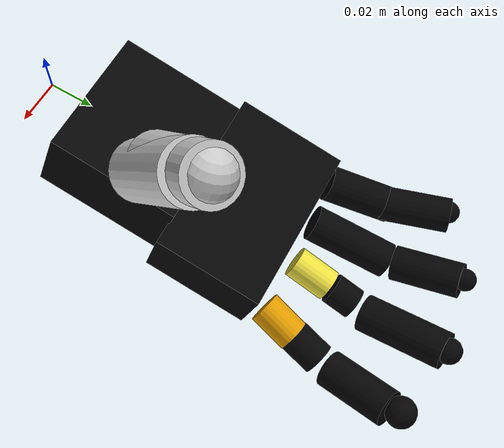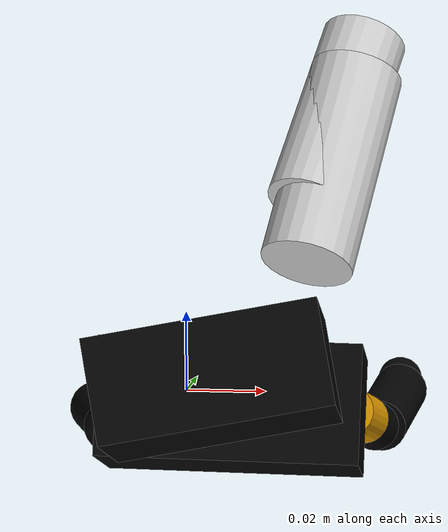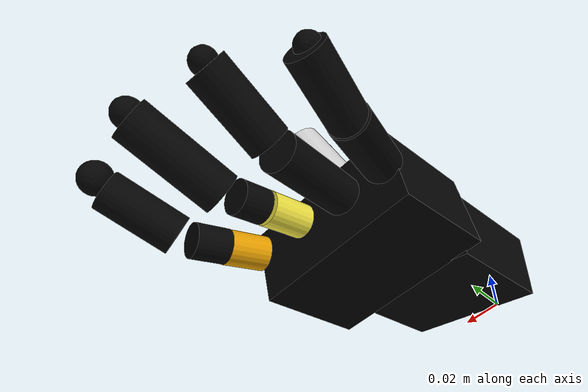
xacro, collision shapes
<?xml version="1.0"?>
<!-- created with Phobos 1.0.1 "Capricious Choutengan" -->
  <!-- model version="4.4.1"-->

  <robot xmlns:xacro="http://wiki.ros.org/xacro" name="mia_hand"
  xmlns:sensor="http://playerstage.sourceforge.net/gazebo/xmlschema/#sensor"
  xmlns:controller="http://playerstage.sourceforge.net/gazebo/xmlschema/#controller"
  xmlns:joint="http://playerstage.sourceforge.net/gazebo/xmlschema/#slider"
  xmlns:interface="http://playerstage.sourceforge.net/gazebo/xmlschema/#interface"
  xmlns:body="http://playerstage.sourceforge.net/gazebo/xmlschema/#body"
  xmlns:geom="http://playerstage.sourceforge.net/gazebo/xmlschema/#geom">

    <link name="index_fle">
      <inertial>
        <origin xyz="-0.000420165 0.007306039 0.000122778" rpy="0 0 0"/>
        <mass value="0.0113"/>
        <inertia ixx="1.486e-06" ixy="0" ixz="0" iyy="2e-07" iyz="0" izz="8.31e-07"/>
      </inertial>
      <collision name="collision_index_pre_sensor">
        <origin xyz="0.000159719 0.023606986 0.001508433" rpy="1.611356378 -1.479902387 -0.009164433"/>
        <geometry>
          <cylinder radius="0.007128498" length="0.016970539"/>
        </geometry>
      </collision>
    </link>

    <link name="index_sensor">
      <inertial>
        <origin xyz="0.000343341 0.026805416 0.000475764" rpy="0 0 0"/>
        <mass value="0.0132"/>
        <inertia ixx="4.063e-06" ixy="9.32e-07" ixz="0" iyy="1.01e-06" iyz="-5e-09" izz="4.81e-06"/>
      </inertial>
      <visual >
        <origin xyz="-0.016737008 -0.126896188 -0.051269896" rpy="0.457628608 -1.375251532 0.776470125"/>
        <geometry>
          <mesh filename="package://mia_hand_description/meshes/stl/index_finger.stl" scale="0.000999987 0.000999987 0.000999987"/>
        </geometry>
        <material name="BLACK"/>
      </visual>
      <visual >
        <origin xyz="-0.016737008 -0.126896188 -0.051269896" rpy="0.457628608 -1.375251532 0.776470125"/>
        <geometry>
          <mesh filename="package://mia_hand_description/meshes/stl/index_tip.stl" scale="0.000999987 0.000999987 0.000999987"/>
        </geometry>
        <material name="WHITE"/>
      </visual>
      <collision name="collision_index_distal">
        <origin xyz="-0.001899783 0.0412638 0.001381427" rpy="1.826135755 -1.502358675 0.115027599"/>
        <geometry>
          <cylinder radius="0.007957385" length="0.030371133"/>
        </geometry>
      </collision>
      <collision name="collision_index_post_sensor">
        <origin xyz="0.00270223 0.014599754 0.001277816" rpy="1.307256699 -1.502358675 0.115027107"/>
        <geometry>
          <cylinder radius="0.007128498" length="0.014262123"/>
        </geometry>
      </collision>
      <collision name="collision_index_tip">
        <origin xyz="-0.010449275 0.059659205 0.000670571" rpy="-0.714037061 -1.367512941 1.09491086"/>
        <geometry>
          <sphere radius="0.006627175"/>
        </geometry>
      </collision>
    </link>

    <link name="little_fle">
      <inertial>
        <origin xyz="-0.00155 0.020800009 -3.5793e-05" rpy="0 0 0"/>
        <mass value="0.0207"/>
        <inertia ixx="7.686e-06" ixy="0" ixz="0" iyy="6.52e-07" iyz="0" izz="7.9e-06"/>
      </inertial>
      <visual >
        <origin xyz="0.021798987 -0.079884358 -0.042128358" rpy="-0.088661931 -1.918641925 1.604480386"/>
        <geometry>
          <mesh filename="package://mia_hand_description/meshes/stl/little_finger.stl" scale="0.000999987 0.000999987 0.000999987"/>
        </geometry>
        <material name="BLACK"/>
      </visual>
      <visual >
        <origin xyz="0.021798987 -0.079884358 -0.042128358" rpy="-0.088661931 -1.918641925 1.604480386"/>
        <geometry>
          <mesh filename="package://mia_hand_description/meshes/stl/little_tip.stl" scale="0.000999987 0.000999987 0.000999987"/>
        </geometry>
        <material name="WHITE"/>
      </visual>
      <collision name="collision_little_distal">
        <origin xyz="-0.009071616 0.052363321 0.000405859" rpy="2.012047291 -1.547703743 0.014830198"/>
        <geometry>
          <cylinder radius="0.007603541" length="0.029933602"/>
        </geometry>
      </collision>
      <collision name="collision_little_proximal">
        <origin xyz="-0.001978738 0.027301736 -4.4674e-05" rpy="1.639323592 -1.540506959 -0.010816745"/>
        <geometry>
          <cylinder radius="0.007827824" length="0.030442052"/>
        </geometry>
      </collision>
      <collision name="collision_little_tip">
        <origin xyz="-0.016595591 0.064731956 -0.000363789" rpy="-1.135860085 -1.918640018 1.561329722"/>
        <geometry>
          <sphere radius="0.00484472"/>
        </geometry>
      </collision>
    </link>

    <link name="middle_fle">
      <inertial>
        <origin xyz="-6.3783e-05 0.006498255 -0.000197619" rpy="0 0 0"/>
        <mass value="0.0123"/>
        <inertia ixx="9.81e-07" ixy="0" ixz="0" iyy="2.03e-07" iyz="0" izz="9.33e-07"/>
      </inertial>
      <collision name="collision_middle_pre_sensor">
        <origin xyz="5.4862e-05 0.02009861 0.000735957" rpy="1.572342396 -1.570796132 0"/>
        <geometry>
          <cylinder radius="0.006834491" length="0.01782351"/>
        </geometry>
      </collision>
    </link>

    <link name="middle_sensor">
      <inertial>
        <origin xyz="-0.003752992 0.025330022 7.9151e-05" rpy="0 0 0"/>
        <mass value="0.0132"/>
        <inertia ixx="4.326e-06" ixy="0" ixz="0" iyy="7.47e-07" iyz="0" izz="4.82e-06"/>
      </inertial>
      <visual>
        <origin xyz="0.007670809 -0.12344341 -0.045150004" rpy="1.396263361 -1.570796371 0"/>
        <geometry>
          <mesh filename="package://mia_hand_description/meshes/stl/middle_finger.stl" scale="0.000999987 0.000999987 0.000999987"/>
        </geometry>
        <material name="BLACK"/>
      </visual>
      <visual >
        <origin xyz="0.007670809 -0.12344341 -0.045150004" rpy="1.396263361 -1.570796371 0"/>
        <geometry>
          <mesh filename="package://mia_hand_description/meshes/stl/middle_tip.stl" scale="0.000999987 0.000999987 0.000999987"/>
        </geometry>
        <material name="WHITE"/>
      </visual>
      <collision name="collision_middle_distal">
        <origin xyz="-0.008653791 0.039425109 0.000735376" rpy="2.091221809 -1.570796371 0"/>
        <geometry>
          <cylinder radius="0.008127632" length="0.038238756"/>
        </geometry>
      </collision>
      <collision name="collision_middle_post_sensor">
        <origin xyz="-0.000414368 0.010920909 0.000735376" rpy="1.572342396 -1.570796371 0"/>
        <geometry>
          <cylinder radius="0.00683449" length="0.011829435"/>
        </geometry>
      </collision>
      <collision name="collision_middle_tip">
        <origin xyz="-0.020539736 0.056403738 0.000735376" rpy="0.525144994 -1.570796371 0"/>
        <geometry>
          <sphere radius="0.005627529"/>
        </geometry>
      </collision>
    </link>

    <link name="palm">
      <inertial>
        <origin xyz="0.00268 0.067100011 -0.015999995" rpy="0 0 0"/>
        <mass value="0.273999989"/>
        <inertia ixx="0.000301" ixy="0" ixz="0" iyy="0.00013" iyz="0" izz="0.000343"/>
      </inertial>
      <visual >
        <origin xyz="0.003035236 0.075372033 -0.025204176" rpy="-0.261799425 0 0"/>
        <geometry>
          <mesh filename="package://mia_hand_description/meshes/stl/dorsum_simple.stl" scale="0.076673768 0.104274787 0.076673768"/>
        </geometry>
        <material name="BLACK"/>
      </visual>
      <visual >
        <origin xyz="0.003800225 0.065974504 -0.012054901" rpy="-0.261799335 0 0"/>
        <geometry>
          <mesh filename="package://mia_hand_description/meshes/stl/palm_simple.stl" scale="0.122026987 0.122026987 0.122026987"/>
        </geometry>
        <material name="BLACK"/>
      </visual>
      <visual >
        <origin xyz="-0.039999999 0.015274569 -0.023892667" rpy="1.308997035 0 0"/>
        <geometry>
          <mesh filename="package://mia_hand_description/meshes/stl/wrist.stl" scale="0.000999999 0.000999999 0.000999999"/>
        </geometry>
        <material name="GREY"/>
      </visual>
      <collision name="collision_hand_distal">
        <origin xyz="0.000396326 0.095129304 -0.021126958" rpy="-0.260977566 0.024364362 0.046443645"/>
        <geometry>
          <box size="0.072641067 0.047533765 0.033261035"/>
        </geometry>
      </collision>
      <collision name="collision_hand_proximal">
        <origin xyz="0.001288421 0.04622658 -0.005689064" rpy="-0.265261889 -0.179528236 0.101421639"/>
        <geometry>
          <box size="0.062414549 0.056382477 0.028578509"/>
        </geometry>
      </collision>
    </link>

    <!-- end effector -->
    <link name="hand_ee_link">
      <inertial>
        <mass value="0.0"/>
        <origin rpy="0 0 0" xyz="0 0 0"/>
        <inertia ixx="0.0" ixy="0.0" ixz="0.0" iyy="0.0" iyz="0.0" izz="0.0"/>
      </inertial>
    </link>

    <joint name="palm_to_hand_ee_link" type="fixed">
        <origin xyz="0 0.13 0.03" rpy="-0.65 0 0"/>
      <parent link="palm"/>
      <child link="hand_ee_link"/>
    </joint>

    <link name="ring_fle">
      <inertial>
        <origin xyz="-0.001120002 0.026399991 0.000203993" rpy="0 0 0"/>
        <mass value="0.0263"/>
        <inertia ixx="1.577e-05" ixy="0" ixz="0" iyy="9.02e-07" iyz="0" izz="1.61e-05"/>
      </inertial>
      <visual >
        <origin xyz="0.01104607 -0.090066954 -0.043558836" rpy="1.65e-07 -1.745330095 1.413716316"/>
        <geometry>
          <mesh filename="package://mia_hand_description/meshes/stl/ring_finger.stl" scale="0.000999987 0.000999987 0.000999987"/>
        </geometry>
        <material name="BLACK"/>
      </visual>
      <visual >
        <origin xyz="0.01104607 -0.090066954 -0.043558836" rpy="1.65e-07 -1.745330095 1.413716316"/>
        <geometry>
          <mesh filename="package://mia_hand_description/meshes/stl/ring_tip.stl" scale="0.000999987 0.000999987 0.000999987"/>
        </geometry>
        <material name="WHITE"/>
      </visual>
      <collision name="collision_ring_distal">
        <origin xyz="-0.008521391 0.063275322 0.000219088" rpy="2.099160433 -1.578026533 0.020510485"/>
        <geometry>
          <cylinder radius="0.00760354" length="0.029933617"/>
        </geometry>
      </collision>
      <collision name="collision_ring_proximal">
        <origin xyz="0.001186912 0.028925091 0.000219103" rpy="1.570796132 -1.570796251 0"/>
        <geometry>
          <cylinder radius="0.007827824" length="0.03682825"/>
        </geometry>
      </collision>
      <collision name="collision_ring_tip">
        <origin xyz="-0.018231211 0.076642096 -0.000189718" rpy="-1.047197104 -1.745329261 1.570796132"/>
        <geometry>
          <sphere radius="0.004873112"/>
        </geometry>
      </collision>
    </link>

    <link name="thumb_fle">
      <inertial>
        <origin xyz="0.012771533 0.029501937 0.000170548" rpy="0 0 0"/>
        <mass value="0.0592"/>
        <inertia ixx="4e-05" ixy="1.3e-08" ixz="0" iyy="3e-06" iyz="4e-09" izz="4.1e-05"/>
      </inertial>
      <visual >
        <origin xyz="-0.003567816 -0.07197547 0.054485805" rpy="0.62849319 1.087863922 0.258483142"/>
        <geometry>
          <mesh filename="package://mia_hand_description/meshes/stl/thumb_cover.stl" scale="0.000999988 0.000999987 0.000999987"/>
        </geometry>
        <material name="WHITE"/>
      </visual>
      <visual >
        <origin xyz="-0.003567816 -0.07197547 0.054485805" rpy="0.62849319 1.087863922 0.258483142"/>
        <geometry>
          <mesh filename="package://mia_hand_description/meshes/stl/thumb_frame.stl" scale="0.000999988 0.000999987 0.000999987"/>
        </geometry>
        <material name="GREY"/>
      </visual>
      <collision name="collision_thumb_distal">
        <origin xyz="0.015668914 0.047384627 0.001403906" rpy="1.470562816 0.195132375 -0.047180746"/>
        <geometry>
          <cylinder radius="0.011694114" length="0.055018328"/>
        </geometry>
      </collision>
      <collision name="collision_thumb_proximal">
        <origin xyz="0.015613321 0.032607533 6.2179e-05" rpy="1.543844342 0.23866643 -0.080058314"/>
        <geometry>
          <cylinder radius="0.012714386" length="0.059818495"/>
        </geometry>
      </collision>
      <collision name="collision_thumb_tip">
        <origin xyz="0.015702201 0.069964014 -0.00075977" rpy="-0.3828291 0.583412647 0.648222387"/>
        <geometry>
          <sphere radius="0.010514786"/>
        </geometry>
      </collision>
    </link>

    <link name="thumb_opp">
      <inertial>
        <origin xyz="0.00026099 0.007620003 0.001220003" rpy="0 0 0"/>
        <mass value="0.013"/>
        <inertia ixx="1.12e-06" ixy="0" ixz="0" iyy="1.2e-07" iyz="0" izz="1.15e-06"/>
      </inertial>
      <visual >
        <origin xyz="-0.054523792 -0.04869514 0.027307283" rpy="-0.128456295 -0.364075422 0.324456483"/>
        <geometry>
          <mesh filename="package://mia_hand_description/meshes/stl/thumb_metacarpus.stl" scale="0.000999987 0.000999987 0.000999987"/>
        </geometry>
        <material name="GREY"/>
      </visual>
    </link>

    <link name="thumb_sensor">
      <inertial>
        <origin xyz="-1.5e-08 -9e-09 -4e-09" rpy="0 0 0"/>
        <mass value="0.000643"/>
        <inertia ixx="1.5e-08" ixy="0" ixz="0" iyy="8e-09" iyz="0" izz="1.5e-08"/>
      </inertial>
    </link>

    <joint name="j_index_fle" type="revolute">
        <origin xyz="0.026305504 0.11021702 -0.021520771" rpy="-1.1997 1.2104 -1.3688"/>
      <parent link="palm"/>
      <child link="index_fle"/>
      <dynamics damping="0.1"/>
      <axis xyz="-6e-08 1.7e-08 0.99999994"/>
      <limit lower="-1.399999976" upper="1.399999976" effort="1.75" velocity="3.140000105"/>
    </joint>

    <joint name="j_index_sensor" type="fixed">
      <origin xyz="-0.000399255 0.024237007 -0.000183955" rpy="0.000630725 -0.000209123 0.172082633"/>
      <parent link="index_fle"/>
      <child link="index_sensor"/>
    </joint>

    <joint name="j_little_fle" type="revolute">
      <origin xyz="-0.027859999 0.107325219 -0.020605115" rpy="-1.7062 1.1206 -1.3498"/>
      <parent link="palm"/>
      <child link="little_fle"/>
      <dynamics damping="0.1"/>
      <axis xyz="-6e-08 1.7e-08 1.0"/>
      <limit lower="0" upper="1.396260023" effort="1.75" velocity="3.140000105"/>
      <mimic joint="j_mrl_fle" multiplier="1" offset="0" /> <!-- to be manually added for Rviz -->
    </joint>

    <joint name="j_mrl_fle" type="revolute">
      <origin xyz="0.00514942 0.113555029 -0.024345273" rpy="-1.5708 1.2335 -1.5708"/>
      <parent link="palm"/>
      <child link="middle_fle"/>
      <dynamics damping="0.1"/>
      <axis xyz="-6e-08 1.7e-08 0.99999994"/>
      <limit lower="0" upper="1.396260023" effort="1.75" velocity="3.140000105"/>
    </joint>

    <joint name="j_middle_sensor" type="fixed">
      <origin xyz="0.000444004 0.025497464 5.81e-07" rpy="1.8e-08 2.07e-07 -3e-08"/>
      <parent link="middle_fle"/>
      <child link="middle_sensor"/>
    </joint>

    <joint name="j_ring_fle" type="revolute">
      <origin xyz="-0.012250358 0.112028912 -0.023936352" rpy="-1.7009 1.2171 -1.5243"/>
      <parent link="palm"/>
      <child link="ring_fle"/>
      <dynamics damping="0.1"/>
      <axis xyz="-6e-08 1.7e-08 1.0"/>
      <limit lower="0" upper="1.396260023" effort="1.75" velocity="3.140000105"/>
      <mimic joint="j_mrl_fle" multiplier="1" offset="0" /> <!-- to be manually added for Rviz -->
    </joint>

    <joint name="j_thumb_fle" type="revolute">
      <origin xyz="-2.7426e-05 -1.0543e-05 -0.008989788" rpy="-1.570910335 0.438224047 1.570665002"/>
      <parent link="thumb_sensor"/>
      <child link="thumb_fle"/>
      <dynamics damping="0.1"/>
      <axis xyz="-6e-08 1.7e-08 1.0"/>
      <limit lower="0" upper="1.134500027" effort="3.5" velocity="1.570000052"/>
    </joint>

    <joint name="j_thumb_opp" type="revolute">
      <origin xyz="0.013073999 0.068108179 -0.001949422" rpy="1.43719089 0.369162768 0.318591952"/>
      <parent link="palm"/>
      <child link="thumb_opp"/>
      <dynamics damping="0.2"/>
      <axis xyz="-6e-08 1.7e-08 1.0"/>
      <limit lower="-0.628318548" upper="0" effort="3.5" velocity="4.0"/>
    </joint>

    <joint name="j_thumb_sensor" type="fixed">
      <origin xyz="-5.942e-06 0.008997655 2.453e-06" rpy="1.570796371 1.01e-07 -1.19e-07"/>
      <parent link="thumb_opp"/>
      <child link="thumb_sensor"/>
    </joint>

    <material name="BLACK">
      <color rgba="0.015019833 0.015019833 0.015019833 1.0"/>
    </material>

    <material name="GREY">
      <color rgba="0.202126482 0.202126482 0.202126482 1.0"/>
    </material>

    <material name="WHITE">
      <color rgba="0.800000012 0.800000012 0.800000012 1.0"/>
    </material>

    <material name="RED">
      <color rgba="1.0 0.0 0.0 1.0"/>
    </material>

    <material name="BLU">
      <color rgba="0.0 0.0 1.0 1.0"/>
    </material>

  </robot>
